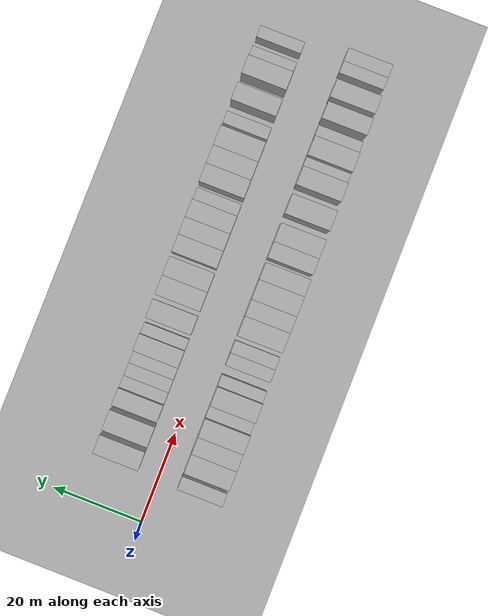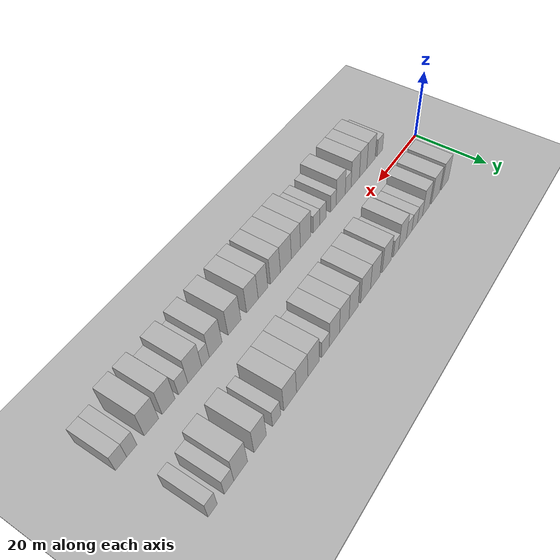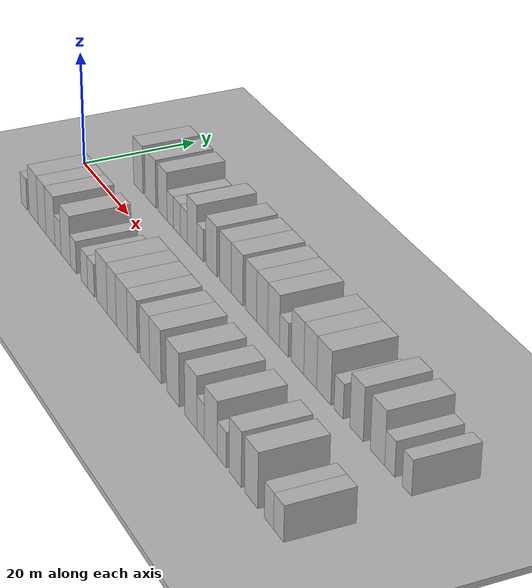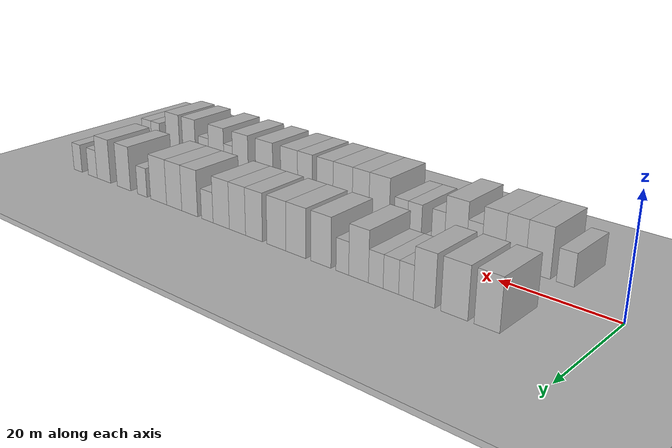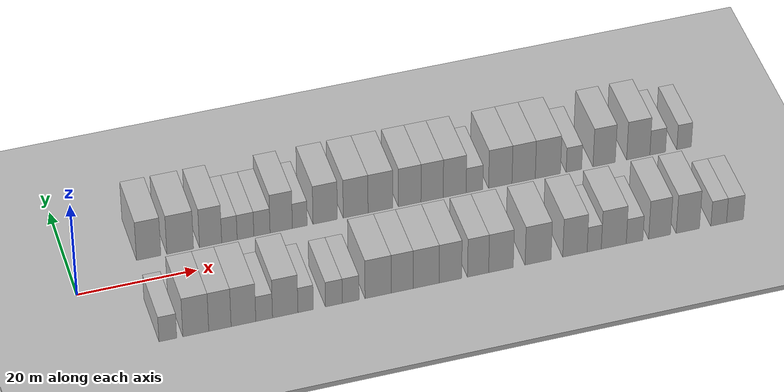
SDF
<sdf version="1.6">
 <world name="default">
  <include><name>ground_plane_1</name><uri>model://HANNAS_ground_plane</uri></include>
  <include>
   <name>ground_plane_2</name>
   <uri>model://HANNAS_ground_plane</uri>
   <pose>100 0 0  0 0 0</pose>
  </include>
  <model name="building_1">
   <static>1</static>
   <pose>13.0396 9.5000 0 0.000000 0.000000 1.570796</pose>
   <link name="link">
    <pose>0 0 4.50 0 0 0</pose>
    <collision name="collision"><geometry><box><size>10.0000 4.0791 9.0000</size></box></geometry></collision>
    <visual name="visual">
     <cast_shadows>0</cast_shadows>
     <geometry><box><size>10.0000 4.0791 9.0000</size></box></geometry>
     <material>
      <script>
       <uri>model://HANNAS_wall/materials/scripts</uri>
       <uri>model://HANNAS_wall/materials/textures</uri>
       <name>vrc/HANNAS_wall</name>
      </script>
     </material>
    </visual>
   </link>
  </model>
  <model name="building_2">
   <static>1</static>
   <pose>18.3261 9.5000 0 0.000000 0.000000 1.570796</pose>
   <link name="link">
    <pose>0 0 4.50 0 0 0</pose>
    <collision name="collision"><geometry><box><size>10.0000 4.4939 9.0000</size></box></geometry></collision>
    <visual name="visual">
     <cast_shadows>0</cast_shadows>
     <geometry><box><size>10.0000 4.4939 9.0000</size></box></geometry>
     <material>
      <script>
       <uri>model://HANNAS_wall/materials/scripts</uri>
       <uri>model://HANNAS_wall/materials/textures</uri>
       <name>vrc/HANNAS_wall</name>
      </script>
     </material>
    </visual>
   </link>
  </model>
  <model name="building_3">
   <static>1</static>
   <pose>23.4481 9.5000 0 0.000000 0.000000 1.570796</pose>
   <link name="link">
    <pose>0 0 4.50 0 0 0</pose>
    <collision name="collision"><geometry><box><size>10.0000 3.7502 9.0000</size></box></geometry></collision>
    <visual name="visual">
     <cast_shadows>0</cast_shadows>
     <geometry><box><size>10.0000 3.7502 9.0000</size></box></geometry>
     <material>
      <script>
       <uri>model://HANNAS_wall/materials/scripts</uri>
       <uri>model://HANNAS_wall/materials/textures</uri>
       <name>vrc/HANNAS_wall</name>
      </script>
     </material>
    </visual>
   </link>
  </model>
  <model name="building_4">
   <static>1</static>
   <pose>26.6285 9.5000 0 0.000000 0.000000 1.570796</pose>
   <link name="link">
    <pose>0 0 3.00 0 0 0</pose>
    <collision name="collision"><geometry><box><size>10.0000 2.6105 6.0000</size></box></geometry></collision>
    <visual name="visual">
     <cast_shadows>0</cast_shadows>
     <geometry><box><size>10.0000 2.6105 6.0000</size></box></geometry>
     <material>
      <script>
       <uri>model://HANNAS_wall/materials/scripts</uri>
       <uri>model://HANNAS_wall/materials/textures</uri>
       <name>vrc/HANNAS_wall</name>
      </script>
     </material>
    </visual>
   </link>
  </model>
  <model name="building_5">
   <static>1</static>
   <pose>29.3491 9.5000 0 0.000000 0.000000 1.570796</pose>
   <link name="link">
    <pose>0 0 3.00 0 0 0</pose>
    <collision name="collision"><geometry><box><size>10.0000 2.8308 6.0000</size></box></geometry></collision>
    <visual name="visual">
     <cast_shadows>0</cast_shadows>
     <geometry><box><size>10.0000 2.8308 6.0000</size></box></geometry>
     <material>
      <script>
       <uri>model://HANNAS_wall/materials/scripts</uri>
       <uri>model://HANNAS_wall/materials/textures</uri>
       <name>vrc/HANNAS_wall</name>
      </script>
     </material>
    </visual>
   </link>
  </model>
  <model name="building_6">
   <static>1</static>
   <pose>32.1376 9.5000 0 0.000000 0.000000 1.570796</pose>
   <link name="link">
    <pose>0 0 3.00 0 0 0</pose>
    <collision name="collision"><geometry><box><size>10.0000 2.7462 6.0000</size></box></geometry></collision>
    <visual name="visual">
     <cast_shadows>0</cast_shadows>
     <geometry><box><size>10.0000 2.7462 6.0000</size></box></geometry>
     <material>
      <script>
       <uri>model://HANNAS_wall/materials/scripts</uri>
       <uri>model://HANNAS_wall/materials/textures</uri>
       <name>vrc/HANNAS_wall</name>
      </script>
     </material>
    </visual>
   </link>
  </model>
  <model name="building_7">
   <static>1</static>
   <pose>35.4104 9.5000 0 0.000000 0.000000 1.570796</pose>
   <link name="link">
    <pose>0 0 4.50 0 0 0</pose>
    <collision name="collision"><geometry><box><size>10.0000 3.7995 9.0000</size></box></geometry></collision>
    <visual name="visual">
     <cast_shadows>0</cast_shadows>
     <geometry><box><size>10.0000 3.7995 9.0000</size></box></geometry>
     <material>
      <script>
       <uri>model://HANNAS_wall/materials/scripts</uri>
       <uri>model://HANNAS_wall/materials/textures</uri>
       <name>vrc/HANNAS_wall</name>
      </script>
     </material>
    </visual>
   </link>
  </model>
  <model name="building_8">
   <static>1</static>
   <pose>38.5644 9.5000 0 0.000000 0.000000 1.570796</pose>
   <link name="link">
    <pose>0 0 3.00 0 0 0</pose>
    <collision name="collision"><geometry><box><size>10.0000 2.5084 6.0000</size></box></geometry></collision>
    <visual name="visual">
     <cast_shadows>0</cast_shadows>
     <geometry><box><size>10.0000 2.5084 6.0000</size></box></geometry>
     <material>
      <script>
       <uri>model://HANNAS_wall/materials/scripts</uri>
       <uri>model://HANNAS_wall/materials/textures</uri>
       <name>vrc/HANNAS_wall</name>
      </script>
     </material>
    </visual>
   </link>
  </model>
  <model name="building_9">
   <static>1</static>
   <pose>42.8995 9.5000 0 0.000000 0.000000 1.570796</pose>
   <link name="link">
    <pose>0 0 4.50 0 0 0</pose>
    <collision name="collision"><geometry><box><size>10.0000 4.1618 9.0000</size></box></geometry></collision>
    <visual name="visual">
     <cast_shadows>0</cast_shadows>
     <geometry><box><size>10.0000 4.1618 9.0000</size></box></geometry>
     <material>
      <script>
       <uri>model://HANNAS_wall/materials/scripts</uri>
       <uri>model://HANNAS_wall/materials/textures</uri>
       <name>vrc/HANNAS_wall</name>
      </script>
     </material>
    </visual>
   </link>
  </model>
  <model name="building_10">
   <static>1</static>
   <pose>48.1074 9.5000 0 0.000000 0.000000 1.570796</pose>
   <link name="link">
    <pose>0 0 4.50 0 0 0</pose>
    <collision name="collision"><geometry><box><size>10.0000 4.2540 9.0000</size></box></geometry></collision>
    <visual name="visual">
     <cast_shadows>0</cast_shadows>
     <geometry><box><size>10.0000 4.2540 9.0000</size></box></geometry>
     <material>
      <script>
       <uri>model://HANNAS_wall/materials/scripts</uri>
       <uri>model://HANNAS_wall/materials/textures</uri>
       <name>vrc/HANNAS_wall</name>
      </script>
     </material>
    </visual>
   </link>
  </model>
  <model name="building_11">
   <static>1</static>
   <pose>52.3440 9.5000 0 0.000000 0.000000 1.570796</pose>
   <link name="link">
    <pose>0 0 4.50 0 0 0</pose>
    <collision name="collision"><geometry><box><size>10.0000 4.2192 9.0000</size></box></geometry></collision>
    <visual name="visual">
     <cast_shadows>0</cast_shadows>
     <geometry><box><size>10.0000 4.2192 9.0000</size></box></geometry>
     <material>
      <script>
       <uri>model://HANNAS_wall/materials/scripts</uri>
       <uri>model://HANNAS_wall/materials/textures</uri>
       <name>vrc/HANNAS_wall</name>
      </script>
     </material>
    </visual>
   </link>
  </model>
  <model name="building_12">
   <static>1</static>
   <pose>57.3987 9.5000 0 0.000000 0.000000 1.570796</pose>
   <link name="link">
    <pose>0 0 4.50 0 0 0</pose>
    <collision name="collision"><geometry><box><size>10.0000 3.8903 9.0000</size></box></geometry></collision>
    <visual name="visual">
     <cast_shadows>0</cast_shadows>
     <geometry><box><size>10.0000 3.8903 9.0000</size></box></geometry>
     <material>
      <script>
       <uri>model://HANNAS_wall/materials/scripts</uri>
       <uri>model://HANNAS_wall/materials/textures</uri>
       <name>vrc/HANNAS_wall</name>
      </script>
     </material>
    </visual>
   </link>
  </model>
  <model name="building_13">
   <static>1</static>
   <pose>61.2580 9.5000 0 0.000000 0.000000 1.570796</pose>
   <link name="link">
    <pose>0 0 4.50 0 0 0</pose>
    <collision name="collision"><geometry><box><size>10.0000 3.8283 9.0000</size></box></geometry></collision>
    <visual name="visual">
     <cast_shadows>0</cast_shadows>
     <geometry><box><size>10.0000 3.8283 9.0000</size></box></geometry>
     <material>
      <script>
       <uri>model://HANNAS_wall/materials/scripts</uri>
       <uri>model://HANNAS_wall/materials/textures</uri>
       <name>vrc/HANNAS_wall</name>
      </script>
     </material>
    </visual>
   </link>
  </model>
  <model name="building_14">
   <static>1</static>
   <pose>65.1616 9.5000 0 0.000000 0.000000 1.570796</pose>
   <link name="link">
    <pose>0 0 4.50 0 0 0</pose>
    <collision name="collision"><geometry><box><size>10.0000 3.9790 9.0000</size></box></geometry></collision>
    <visual name="visual">
     <cast_shadows>0</cast_shadows>
     <geometry><box><size>10.0000 3.9790 9.0000</size></box></geometry>
     <material>
      <script>
       <uri>model://HANNAS_wall/materials/scripts</uri>
       <uri>model://HANNAS_wall/materials/textures</uri>
       <name>vrc/HANNAS_wall</name>
      </script>
     </material>
    </visual>
   </link>
  </model>
  <model name="building_15">
   <static>1</static>
   <pose>68.5978 9.5000 0 0.000000 0.000000 1.570796</pose>
   <link name="link">
    <pose>0 0 3.00 0 0 0</pose>
    <collision name="collision"><geometry><box><size>10.0000 2.8933 6.0000</size></box></geometry></collision>
    <visual name="visual">
     <cast_shadows>0</cast_shadows>
     <geometry><box><size>10.0000 2.8933 6.0000</size></box></geometry>
     <material>
      <script>
       <uri>model://HANNAS_wall/materials/scripts</uri>
       <uri>model://HANNAS_wall/materials/textures</uri>
       <name>vrc/HANNAS_wall</name>
      </script>
     </material>
    </visual>
   </link>
  </model>
  <model name="building_16">
   <static>1</static>
   <pose>73.0842 9.5000 0 0.000000 0.000000 1.570796</pose>
   <link name="link">
    <pose>0 0 4.50 0 0 0</pose>
    <collision name="collision"><geometry><box><size>10.0000 4.0796 9.0000</size></box></geometry></collision>
    <visual name="visual">
     <cast_shadows>0</cast_shadows>
     <geometry><box><size>10.0000 4.0796 9.0000</size></box></geometry>
     <material>
      <script>
       <uri>model://HANNAS_wall/materials/scripts</uri>
       <uri>model://HANNAS_wall/materials/textures</uri>
       <name>vrc/HANNAS_wall</name>
      </script>
     </material>
    </visual>
   </link>
  </model>
  <model name="building_17">
   <static>1</static>
   <pose>77.1564 9.5000 0 0.000000 0.000000 1.570796</pose>
   <link name="link">
    <pose>0 0 4.50 0 0 0</pose>
    <collision name="collision"><geometry><box><size>10.0000 4.0648 9.0000</size></box></geometry></collision>
    <visual name="visual">
     <cast_shadows>0</cast_shadows>
     <geometry><box><size>10.0000 4.0648 9.0000</size></box></geometry>
     <material>
      <script>
       <uri>model://HANNAS_wall/materials/scripts</uri>
       <uri>model://HANNAS_wall/materials/textures</uri>
       <name>vrc/HANNAS_wall</name>
      </script>
     </material>
    </visual>
   </link>
  </model>
  <model name="building_18">
   <static>1</static>
   <pose>81.3913 9.5000 0 0.000000 0.000000 1.570796</pose>
   <link name="link">
    <pose>0 0 4.50 0 0 0</pose>
    <collision name="collision"><geometry><box><size>10.0000 4.4050 9.0000</size></box></geometry></collision>
    <visual name="visual">
     <cast_shadows>0</cast_shadows>
     <geometry><box><size>10.0000 4.4050 9.0000</size></box></geometry>
     <material>
      <script>
       <uri>model://HANNAS_wall/materials/scripts</uri>
       <uri>model://HANNAS_wall/materials/textures</uri>
       <name>vrc/HANNAS_wall</name>
      </script>
     </material>
    </visual>
   </link>
  </model>
  <model name="building_19">
   <static>1</static>
   <pose>85.9540 9.5000 0 0.000000 0.000000 1.570796</pose>
   <link name="link">
    <pose>0 0 3.00 0 0 0</pose>
    <collision name="collision"><geometry><box><size>10.0000 2.7203 6.0000</size></box></geometry></collision>
    <visual name="visual">
     <cast_shadows>0</cast_shadows>
     <geometry><box><size>10.0000 2.7203 6.0000</size></box></geometry>
     <material>
      <script>
       <uri>model://HANNAS_wall/materials/scripts</uri>
       <uri>model://HANNAS_wall/materials/textures</uri>
       <name>vrc/HANNAS_wall</name>
      </script>
     </material>
    </visual>
   </link>
  </model>
  <model name="building_20">
   <static>1</static>
   <pose>91.2753 9.5000 0 0.000000 0.000000 1.570796</pose>
   <link name="link">
    <pose>0 0 4.50 0 0 0</pose>
    <collision name="collision"><geometry><box><size>10.0000 3.9223 9.0000</size></box></geometry></collision>
    <visual name="visual">
     <cast_shadows>0</cast_shadows>
     <geometry><box><size>10.0000 3.9223 9.0000</size></box></geometry>
     <material>
      <script>
       <uri>model://HANNAS_wall/materials/scripts</uri>
       <uri>model://HANNAS_wall/materials/textures</uri>
       <name>vrc/HANNAS_wall</name>
      </script>
     </material>
    </visual>
   </link>
  </model>
  <model name="building_21">
   <static>1</static>
   <pose>97.2928 9.5000 0 0.000000 0.000000 1.570796</pose>
   <link name="link">
    <pose>0 0 4.50 0 0 0</pose>
    <collision name="collision"><geometry><box><size>10.0000 4.1127 9.0000</size></box></geometry></collision>
    <visual name="visual">
     <cast_shadows>0</cast_shadows>
     <geometry><box><size>10.0000 4.1127 9.0000</size></box></geometry>
     <material>
      <script>
       <uri>model://HANNAS_wall/materials/scripts</uri>
       <uri>model://HANNAS_wall/materials/textures</uri>
       <name>vrc/HANNAS_wall</name>
      </script>
     </material>
    </visual>
   </link>
  </model>
  <model name="building_22">
   <static>1</static>
   <pose>100.7341 9.5000 0 0.000000 0.000000 1.570796</pose>
   <link name="link">
    <pose>0 0 3.00 0 0 0</pose>
    <collision name="collision"><geometry><box><size>10.0000 2.7700 6.0000</size></box></geometry></collision>
    <visual name="visual">
     <cast_shadows>0</cast_shadows>
     <geometry><box><size>10.0000 2.7700 6.0000</size></box></geometry>
     <material>
      <script>
       <uri>model://HANNAS_wall/materials/scripts</uri>
       <uri>model://HANNAS_wall/materials/textures</uri>
       <name>vrc/HANNAS_wall</name>
      </script>
     </material>
    </visual>
   </link>
  </model>
  <model name="building_23">
   <static>1</static>
   <pose>105.4062 9.5000 0 0.000000 0.000000 1.570796</pose>
   <link name="link">
    <pose>0 0 3.00 0 0 0</pose>
    <collision name="collision"><geometry><box><size>10.0000 2.5742 6.0000</size></box></geometry></collision>
    <visual name="visual">
     <cast_shadows>0</cast_shadows>
     <geometry><box><size>10.0000 2.5742 6.0000</size></box></geometry>
     <material>
      <script>
       <uri>model://HANNAS_wall/materials/scripts</uri>
       <uri>model://HANNAS_wall/materials/textures</uri>
       <name>vrc/HANNAS_wall</name>
      </script>
     </material>
    </visual>
   </link>
  </model>
  <model name="building_47">
   <static>1</static>
   <pose>11.4581 -9.5000 0 0.000000 0.000000 1.570796</pose>
   <link name="link">
    <pose>0 0 3.00 0 0 0</pose>
    <collision name="collision"><geometry><box><size>10.0000 2.9162 6.0000</size></box></geometry></collision>
    <visual name="visual">
     <cast_shadows>0</cast_shadows>
     <geometry><box><size>10.0000 2.9162 6.0000</size></box></geometry>
     <material>
      <script>
       <uri>model://HANNAS_wall/materials/scripts</uri>
       <uri>model://HANNAS_wall/materials/textures</uri>
       <name>vrc/HANNAS_wall</name>
      </script>
     </material>
    </visual>
   </link>
  </model>
  <model name="building_48">
   <static>1</static>
   <pose>16.0520 -9.5000 0 0.000000 0.000000 1.570796</pose>
   <link name="link">
    <pose>0 0 4.50 0 0 0</pose>
    <collision name="collision"><geometry><box><size>10.0000 4.2716 9.0000</size></box></geometry></collision>
    <visual name="visual">
     <cast_shadows>0</cast_shadows>
     <geometry><box><size>10.0000 4.2716 9.0000</size></box></geometry>
     <material>
      <script>
       <uri>model://HANNAS_wall/materials/scripts</uri>
       <uri>model://HANNAS_wall/materials/textures</uri>
       <name>vrc/HANNAS_wall</name>
      </script>
     </material>
    </visual>
   </link>
  </model>
  <model name="building_49">
   <static>1</static>
   <pose>20.0341 -9.5000 0 0.000000 0.000000 1.570796</pose>
   <link name="link">
    <pose>0 0 4.50 0 0 0</pose>
    <collision name="collision"><geometry><box><size>10.0000 3.6925 9.0000</size></box></geometry></collision>
    <visual name="visual">
     <cast_shadows>0</cast_shadows>
     <geometry><box><size>10.0000 3.6925 9.0000</size></box></geometry>
     <material>
      <script>
       <uri>model://HANNAS_wall/materials/scripts</uri>
       <uri>model://HANNAS_wall/materials/textures</uri>
       <name>vrc/HANNAS_wall</name>
      </script>
     </material>
    </visual>
   </link>
  </model>
  <model name="building_50">
   <static>1</static>
   <pose>23.9258 -9.5000 0 0.000000 0.000000 1.570796</pose>
   <link name="link">
    <pose>0 0 4.50 0 0 0</pose>
    <collision name="collision"><geometry><box><size>10.0000 4.0909 9.0000</size></box></geometry></collision>
    <visual name="visual">
     <cast_shadows>0</cast_shadows>
     <geometry><box><size>10.0000 4.0909 9.0000</size></box></geometry>
     <material>
      <script>
       <uri>model://HANNAS_wall/materials/scripts</uri>
       <uri>model://HANNAS_wall/materials/textures</uri>
       <name>vrc/HANNAS_wall</name>
      </script>
     </material>
    </visual>
   </link>
  </model>
  <model name="building_51">
   <static>1</static>
   <pose>27.3574 -9.5000 0 0.000000 0.000000 1.570796</pose>
   <link name="link">
    <pose>0 0 3.00 0 0 0</pose>
    <collision name="collision"><geometry><box><size>10.0000 2.7722 6.0000</size></box></geometry></collision>
    <visual name="visual">
     <cast_shadows>0</cast_shadows>
     <geometry><box><size>10.0000 2.7722 6.0000</size></box></geometry>
     <material>
      <script>
       <uri>model://HANNAS_wall/materials/scripts</uri>
       <uri>model://HANNAS_wall/materials/textures</uri>
       <name>vrc/HANNAS_wall</name>
      </script>
     </material>
    </visual>
   </link>
  </model>
  <model name="building_52">
   <static>1</static>
   <pose>30.8595 -9.5000 0 0.000000 0.000000 1.570796</pose>
   <link name="link">
    <pose>0 0 4.50 0 0 0</pose>
    <collision name="collision"><geometry><box><size>10.0000 4.2320 9.0000</size></box></geometry></collision>
    <visual name="visual">
     <cast_shadows>0</cast_shadows>
     <geometry><box><size>10.0000 4.2320 9.0000</size></box></geometry>
     <material>
      <script>
       <uri>model://HANNAS_wall/materials/scripts</uri>
       <uri>model://HANNAS_wall/materials/textures</uri>
       <name>vrc/HANNAS_wall</name>
      </script>
     </material>
    </visual>
   </link>
  </model>
  <model name="building_53">
   <static>1</static>
   <pose>34.2607 -9.5000 0 0.000000 0.000000 1.570796</pose>
   <link name="link">
    <pose>0 0 3.00 0 0 0</pose>
    <collision name="collision"><geometry><box><size>10.0000 2.5706 6.0000</size></box></geometry></collision>
    <visual name="visual">
     <cast_shadows>0</cast_shadows>
     <geometry><box><size>10.0000 2.5706 6.0000</size></box></geometry>
     <material>
      <script>
       <uri>model://HANNAS_wall/materials/scripts</uri>
       <uri>model://HANNAS_wall/materials/textures</uri>
       <name>vrc/HANNAS_wall</name>
      </script>
     </material>
    </visual>
   </link>
  </model>
  <model name="building_54">
   <static>1</static>
   <pose>38.9569 -9.5000 0 0.000000 0.000000 1.570796</pose>
   <link name="link">
    <pose>0 0 3.00 0 0 0</pose>
    <collision name="collision"><geometry><box><size>10.0000 2.8217 6.0000</size></box></geometry></collision>
    <visual name="visual">
     <cast_shadows>0</cast_shadows>
     <geometry><box><size>10.0000 2.8217 6.0000</size></box></geometry>
     <material>
      <script>
       <uri>model://HANNAS_wall/materials/scripts</uri>
       <uri>model://HANNAS_wall/materials/textures</uri>
       <name>vrc/HANNAS_wall</name>
      </script>
     </material>
    </visual>
   </link>
  </model>
  <model name="building_55">
   <static>1</static>
   <pose>41.7753 -9.5000 0 0.000000 0.000000 1.570796</pose>
   <link name="link">
    <pose>0 0 3.00 0 0 0</pose>
    <collision name="collision"><geometry><box><size>10.0000 2.8153 6.0000</size></box></geometry></collision>
    <visual name="visual">
     <cast_shadows>0</cast_shadows>
     <geometry><box><size>10.0000 2.8153 6.0000</size></box></geometry>
     <material>
      <script>
       <uri>model://HANNAS_wall/materials/scripts</uri>
       <uri>model://HANNAS_wall/materials/textures</uri>
       <name>vrc/HANNAS_wall</name>
      </script>
     </material>
    </visual>
   </link>
  </model>
  <model name="building_56">
   <static>1</static>
   <pose>46.3729 -9.5000 0 0.000000 0.000000 1.570796</pose>
   <link name="link">
    <pose>0 0 4.50 0 0 0</pose>
    <collision name="collision"><geometry><box><size>10.0000 4.3799 9.0000</size></box></geometry></collision>
    <visual name="visual">
     <cast_shadows>0</cast_shadows>
     <geometry><box><size>10.0000 4.3799 9.0000</size></box></geometry>
     <material>
      <script>
       <uri>model://HANNAS_wall/materials/scripts</uri>
       <uri>model://HANNAS_wall/materials/textures</uri>
       <name>vrc/HANNAS_wall</name>
      </script>
     </material>
    </visual>
   </link>
  </model>
  <model name="building_57">
   <static>1</static>
   <pose>50.4060 -9.5000 0 0.000000 0.000000 1.570796</pose>
   <link name="link">
    <pose>0 0 4.50 0 0 0</pose>
    <collision name="collision"><geometry><box><size>10.0000 3.6864 9.0000</size></box></geometry></collision>
    <visual name="visual">
     <cast_shadows>0</cast_shadows>
     <geometry><box><size>10.0000 3.6864 9.0000</size></box></geometry>
     <material>
      <script>
       <uri>model://HANNAS_wall/materials/scripts</uri>
       <uri>model://HANNAS_wall/materials/textures</uri>
       <name>vrc/HANNAS_wall</name>
      </script>
     </material>
    </visual>
   </link>
  </model>
  <model name="building_58">
   <static>1</static>
   <pose>54.4502 -9.5000 0 0.000000 0.000000 1.570796</pose>
   <link name="link">
    <pose>0 0 4.50 0 0 0</pose>
    <collision name="collision"><geometry><box><size>10.0000 4.4020 9.0000</size></box></geometry></collision>
    <visual name="visual">
     <cast_shadows>0</cast_shadows>
     <geometry><box><size>10.0000 4.4020 9.0000</size></box></geometry>
     <material>
      <script>
       <uri>model://HANNAS_wall/materials/scripts</uri>
       <uri>model://HANNAS_wall/materials/textures</uri>
       <name>vrc/HANNAS_wall</name>
      </script>
     </material>
    </visual>
   </link>
  </model>
  <model name="building_59">
   <static>1</static>
   <pose>58.5550 -9.5000 0 0.000000 0.000000 1.570796</pose>
   <link name="link">
    <pose>0 0 4.50 0 0 0</pose>
    <collision name="collision"><geometry><box><size>10.0000 3.8074 9.0000</size></box></geometry></collision>
    <visual name="visual">
     <cast_shadows>0</cast_shadows>
     <geometry><box><size>10.0000 3.8074 9.0000</size></box></geometry>
     <material>
      <script>
       <uri>model://HANNAS_wall/materials/scripts</uri>
       <uri>model://HANNAS_wall/materials/textures</uri>
       <name>vrc/HANNAS_wall</name>
      </script>
     </material>
    </visual>
   </link>
  </model>
  <model name="building_60">
   <static>1</static>
   <pose>63.2596 -9.5000 0 0.000000 0.000000 1.570796</pose>
   <link name="link">
    <pose>0 0 4.50 0 0 0</pose>
    <collision name="collision"><geometry><box><size>10.0000 3.6018 9.0000</size></box></geometry></collision>
    <visual name="visual">
     <cast_shadows>0</cast_shadows>
     <geometry><box><size>10.0000 3.6018 9.0000</size></box></geometry>
     <material>
      <script>
       <uri>model://HANNAS_wall/materials/scripts</uri>
       <uri>model://HANNAS_wall/materials/textures</uri>
       <name>vrc/HANNAS_wall</name>
      </script>
     </material>
    </visual>
   </link>
  </model>
  <model name="building_61">
   <static>1</static>
   <pose>67.1577 -9.5000 0 0.000000 0.000000 1.570796</pose>
   <link name="link">
    <pose>0 0 4.50 0 0 0</pose>
    <collision name="collision"><geometry><box><size>10.0000 4.1945 9.0000</size></box></geometry></collision>
    <visual name="visual">
     <cast_shadows>0</cast_shadows>
     <geometry><box><size>10.0000 4.1945 9.0000</size></box></geometry>
     <material>
      <script>
       <uri>model://HANNAS_wall/materials/scripts</uri>
       <uri>model://HANNAS_wall/materials/textures</uri>
       <name>vrc/HANNAS_wall</name>
      </script>
     </material>
    </visual>
   </link>
  </model>
  <model name="building_62">
   <static>1</static>
   <pose>73.4821 -9.5000 0 0.000000 0.000000 1.570796</pose>
   <link name="link">
    <pose>0 0 4.50 0 0 0</pose>
    <collision name="collision"><geometry><box><size>10.0000 4.4543 9.0000</size></box></geometry></collision>
    <visual name="visual">
     <cast_shadows>0</cast_shadows>
     <geometry><box><size>10.0000 4.4543 9.0000</size></box></geometry>
     <material>
      <script>
       <uri>model://HANNAS_wall/materials/scripts</uri>
       <uri>model://HANNAS_wall/materials/textures</uri>
       <name>vrc/HANNAS_wall</name>
      </script>
     </material>
    </visual>
   </link>
  </model>
  <model name="building_63">
   <static>1</static>
   <pose>79.8026 -9.5000 0 0.000000 0.000000 1.570796</pose>
   <link name="link">
    <pose>0 0 4.50 0 0 0</pose>
    <collision name="collision"><geometry><box><size>10.0000 4.1866 9.0000</size></box></geometry></collision>
    <visual name="visual">
     <cast_shadows>0</cast_shadows>
     <geometry><box><size>10.0000 4.1866 9.0000</size></box></geometry>
     <material>
      <script>
       <uri>model://HANNAS_wall/materials/scripts</uri>
       <uri>model://HANNAS_wall/materials/textures</uri>
       <name>vrc/HANNAS_wall</name>
      </script>
     </material>
    </visual>
   </link>
  </model>
  <model name="building_64">
   <static>1</static>
   <pose>83.1112 -9.5000 0 0.000000 0.000000 1.570796</pose>
   <link name="link">
    <pose>0 0 3.00 0 0 0</pose>
    <collision name="collision"><geometry><box><size>10.0000 2.4305 6.0000</size></box></geometry></collision>
    <visual name="visual">
     <cast_shadows>0</cast_shadows>
     <geometry><box><size>10.0000 2.4305 6.0000</size></box></geometry>
     <material>
      <script>
       <uri>model://HANNAS_wall/materials/scripts</uri>
       <uri>model://HANNAS_wall/materials/textures</uri>
       <name>vrc/HANNAS_wall</name>
      </script>
     </material>
    </visual>
   </link>
  </model>
  <model name="building_65">
   <static>1</static>
   <pose>86.4798 -9.5000 0 0.000000 0.000000 1.570796</pose>
   <link name="link">
    <pose>0 0 4.50 0 0 0</pose>
    <collision name="collision"><geometry><box><size>10.0000 4.3069 9.0000</size></box></geometry></collision>
    <visual name="visual">
     <cast_shadows>0</cast_shadows>
     <geometry><box><size>10.0000 4.3069 9.0000</size></box></geometry>
     <material>
      <script>
       <uri>model://HANNAS_wall/materials/scripts</uri>
       <uri>model://HANNAS_wall/materials/textures</uri>
       <name>vrc/HANNAS_wall</name>
      </script>
     </material>
    </visual>
   </link>
  </model>
  <model name="building_66">
   <static>1</static>
   <pose>90.0707 -9.5000 0 0.000000 0.000000 1.570796</pose>
   <link name="link">
    <pose>0 0 3.00 0 0 0</pose>
    <collision name="collision"><geometry><box><size>10.0000 2.8748 6.0000</size></box></geometry></collision>
    <visual name="visual">
     <cast_shadows>0</cast_shadows>
     <geometry><box><size>10.0000 2.8748 6.0000</size></box></geometry>
     <material>
      <script>
       <uri>model://HANNAS_wall/materials/scripts</uri>
       <uri>model://HANNAS_wall/materials/textures</uri>
       <name>vrc/HANNAS_wall</name>
      </script>
     </material>
    </visual>
   </link>
  </model>
  <model name="building_67">
   <static>1</static>
   <pose>94.3955 -9.5000 0 0.000000 0.000000 1.570796</pose>
   <link name="link">
    <pose>0 0 4.50 0 0 0</pose>
    <collision name="collision"><geometry><box><size>10.0000 3.7749 9.0000</size></box></geometry></collision>
    <visual name="visual">
     <cast_shadows>0</cast_shadows>
     <geometry><box><size>10.0000 3.7749 9.0000</size></box></geometry>
     <material>
      <script>
       <uri>model://HANNAS_wall/materials/scripts</uri>
       <uri>model://HANNAS_wall/materials/textures</uri>
       <name>vrc/HANNAS_wall</name>
      </script>
     </material>
    </visual>
   </link>
  </model>
  <model name="building_68">
   <static>1</static>
   <pose>99.3005 -9.5000 0 0.000000 0.000000 1.570796</pose>
   <link name="link">
    <pose>0 0 4.50 0 0 0</pose>
    <collision name="collision"><geometry><box><size>10.0000 4.0350 9.0000</size></box></geometry></collision>
    <visual name="visual">
     <cast_shadows>0</cast_shadows>
     <geometry><box><size>10.0000 4.0350 9.0000</size></box></geometry>
     <material>
      <script>
       <uri>model://HANNAS_wall/materials/scripts</uri>
       <uri>model://HANNAS_wall/materials/textures</uri>
       <name>vrc/HANNAS_wall</name>
      </script>
     </material>
    </visual>
   </link>
  </model>
  <model name="building_69">
   <static>1</static>
   <pose>104.6822 -9.5000 0 0.000000 0.000000 1.570796</pose>
   <link name="link">
    <pose>0 0 3.00 0 0 0</pose>
    <collision name="collision"><geometry><box><size>10.0000 2.7284 6.0000</size></box></geometry></collision>
    <visual name="visual">
     <cast_shadows>0</cast_shadows>
     <geometry><box><size>10.0000 2.7284 6.0000</size></box></geometry>
     <material>
      <script>
       <uri>model://HANNAS_wall/materials/scripts</uri>
       <uri>model://HANNAS_wall/materials/textures</uri>
       <name>vrc/HANNAS_wall</name>
      </script>
     </material>
    </visual>
   </link>
  </model>
  <model name="building_70">
   <static>1</static>
   <pose>107.5160 -9.5000 0 0.000000 0.000000 1.570796</pose>
   <link name="link">
    <pose>0 0 3.00 0 0 0</pose>
    <collision name="collision"><geometry><box><size>10.0000 2.9394 6.0000</size></box></geometry></collision>
    <visual name="visual">
     <cast_shadows>0</cast_shadows>
     <geometry><box><size>10.0000 2.9394 6.0000</size></box></geometry>
     <material>
      <script>
       <uri>model://HANNAS_wall/materials/scripts</uri>
       <uri>model://HANNAS_wall/materials/textures</uri>
       <name>vrc/HANNAS_wall</name>
      </script>
     </material>
    </visual>
   </link>
  </model>
 </world>
</sdf>
